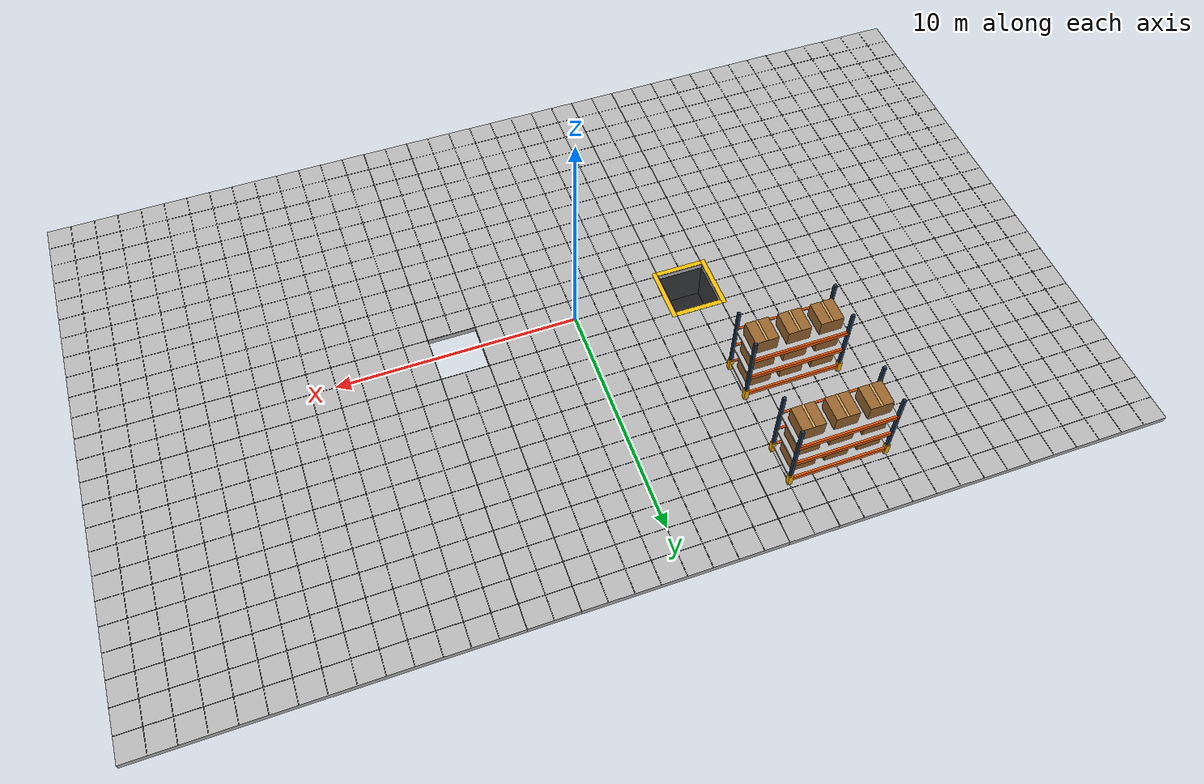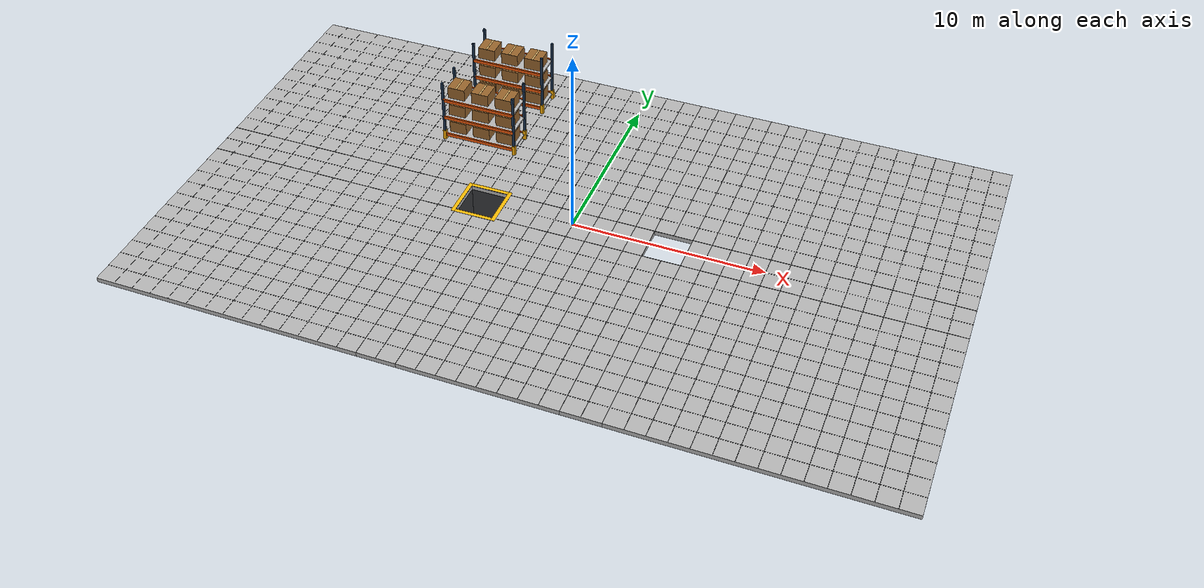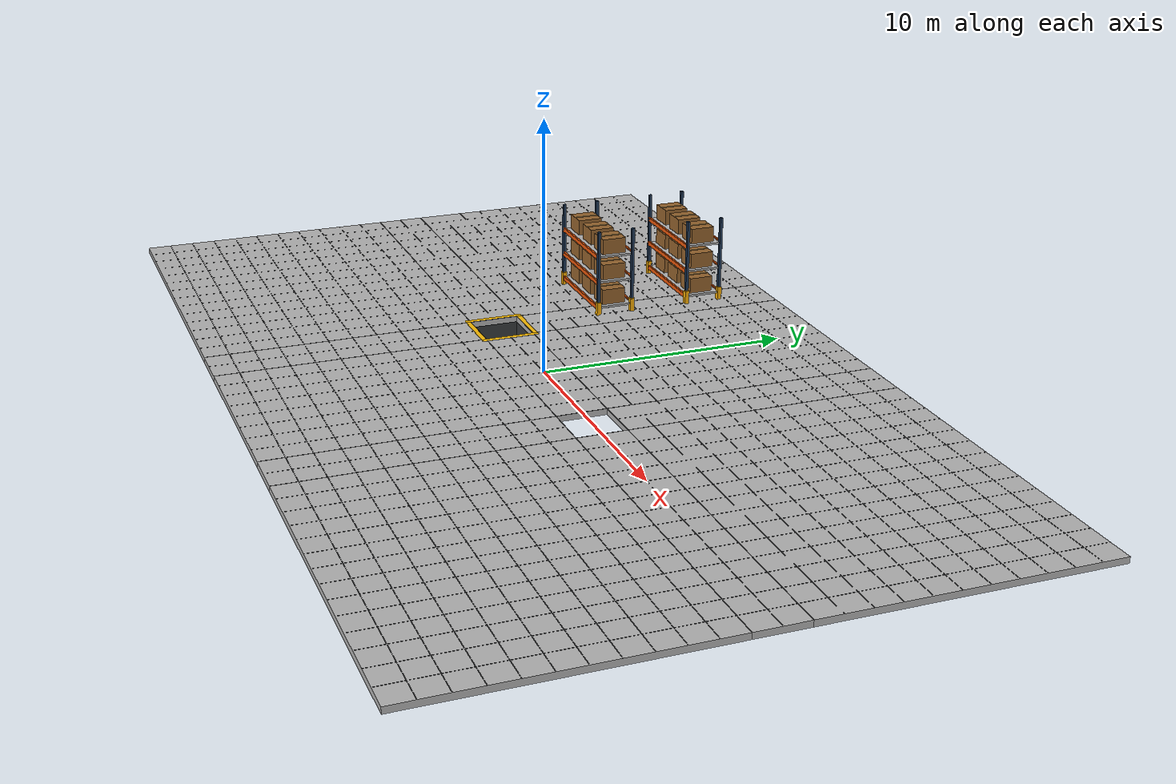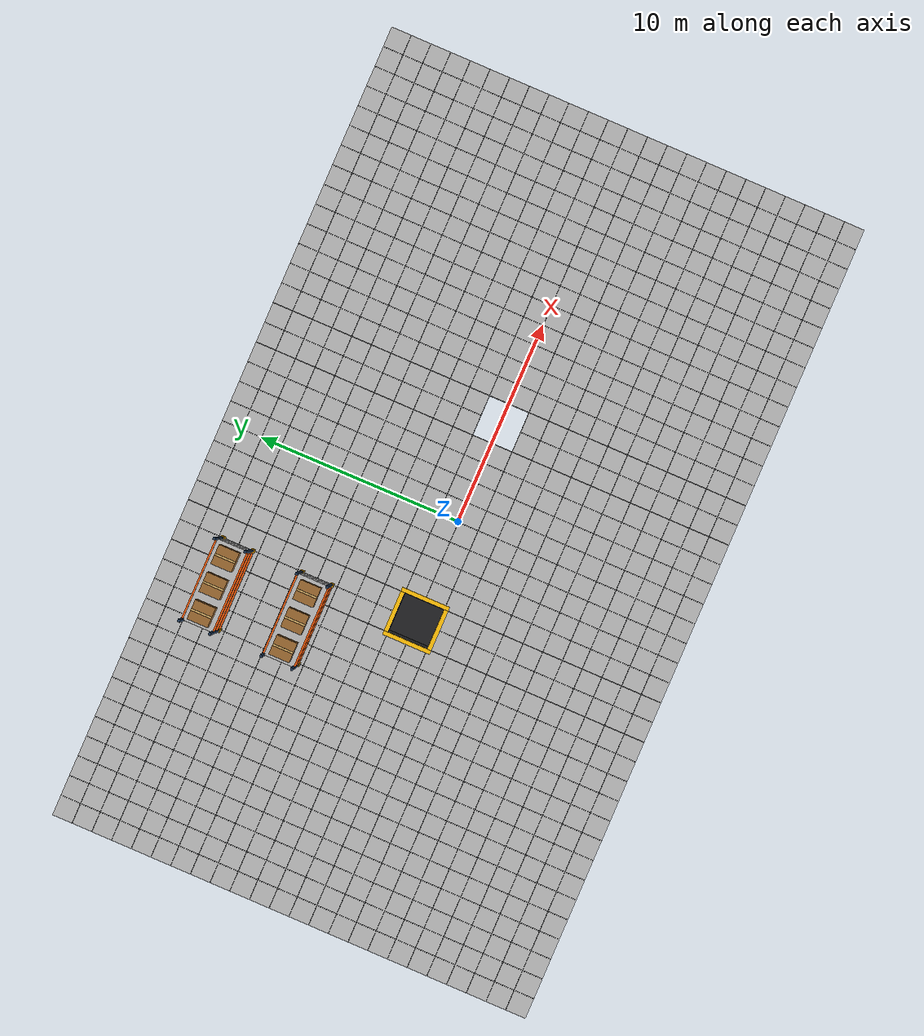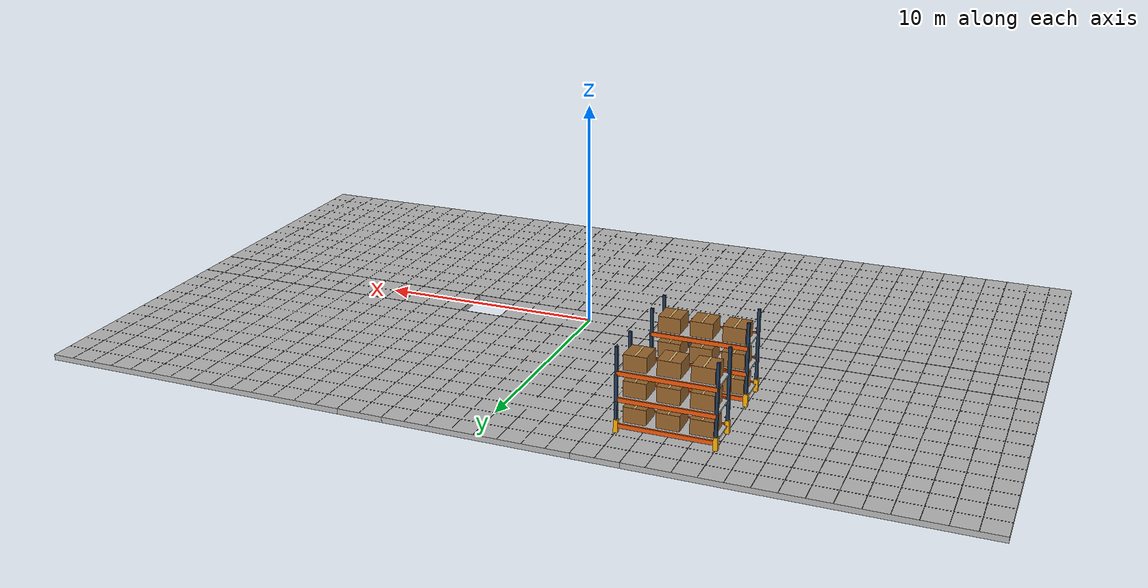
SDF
<sdf version="1.9">
 <world name="factory">
  <model name="unified_factory_floor">
   <static>true</static>
   <link name="body">
    <visual name="floor_0_0_visual">
     <pose>-13 -6.5 -0.12 0 0 0</pose>
     <geometry><mesh><uri>model://factory_scene_assets/meshes/floor_000.dae</uri></mesh></geometry>
    </visual>
    <collision name="floor_0_0_collision">
     <pose>-13 -6.5 -0.12 0 0 0</pose>
     <geometry><box><size>14 11 0.24</size></box></geometry>
    </collision>
    <visual name="floor_0_1_visual">
     <pose>-13 0 -0.12 0 0 0</pose>
     <geometry><mesh><uri>model://factory_scene_assets/meshes/floor_001.dae</uri></mesh></geometry>
    </visual>
    <collision name="floor_0_1_collision">
     <pose>-13 0 -0.12 0 0 0</pose>
     <geometry><box><size>14 2 0.24</size></box></geometry>
    </collision>
    <visual name="floor_0_2_visual">
     <pose>-13 6.5 -0.12 0 0 0</pose>
     <geometry><mesh><uri>model://factory_scene_assets/meshes/floor_000.dae</uri></mesh></geometry>
    </visual>
    <collision name="floor_0_2_collision">
     <pose>-13 6.5 -0.12 0 0 0</pose>
     <geometry><box><size>14 11 0.24</size></box></geometry>
    </collision>
    <visual name="floor_1_0_visual">
     <pose>-5 -6.5 -0.12 0 0 0</pose>
     <geometry><mesh><uri>model://factory_scene_assets/meshes/floor_002.dae</uri></mesh></geometry>
    </visual>
    <collision name="floor_1_0_collision">
     <pose>-5 -6.5 -0.12 0 0 0</pose>
     <geometry><box><size>2 11 0.24</size></box></geometry>
    </collision>
    <visual name="floor_1_2_visual">
     <pose>-5 6.5 -0.12 0 0 0</pose>
     <geometry><mesh><uri>model://factory_scene_assets/meshes/floor_002.dae</uri></mesh></geometry>
    </visual>
    <collision name="floor_1_2_collision">
     <pose>-5 6.5 -0.12 0 0 0</pose>
     <geometry><box><size>2 11 0.24</size></box></geometry>
    </collision>
    <visual name="floor_2_0_visual">
     <pose>0 -6.5 -0.12 0 0 0</pose>
     <geometry><mesh><uri>model://factory_scene_assets/meshes/floor_003.dae</uri></mesh></geometry>
    </visual>
    <collision name="floor_2_0_collision">
     <pose>0 -6.5 -0.12 0 0 0</pose>
     <geometry><box><size>8 11 0.24</size></box></geometry>
    </collision>
    <visual name="floor_2_1_visual">
     <pose>0 0 -0.12 0 0 0</pose>
     <geometry><mesh><uri>model://factory_scene_assets/meshes/floor_004.dae</uri></mesh></geometry>
    </visual>
    <collision name="floor_2_1_collision">
     <pose>0 0 -0.12 0 0 0</pose>
     <geometry><box><size>8 2 0.24</size></box></geometry>
    </collision>
    <visual name="floor_2_2_visual">
     <pose>0 6.5 -0.12 0 0 0</pose>
     <geometry><mesh><uri>model://factory_scene_assets/meshes/floor_003.dae</uri></mesh></geometry>
    </visual>
    <collision name="floor_2_2_collision">
     <pose>0 6.5 -0.12 0 0 0</pose>
     <geometry><box><size>8 11 0.24</size></box></geometry>
    </collision>
    <visual name="floor_3_0_visual">
     <pose>5 -6.5 -0.12 0 0 0</pose>
     <geometry><mesh><uri>model://factory_scene_assets/meshes/floor_002.dae</uri></mesh></geometry>
    </visual>
    <collision name="floor_3_0_collision">
     <pose>5 -6.5 -0.12 0 0 0</pose>
     <geometry><box><size>2 11 0.24</size></box></geometry>
    </collision>
    <visual name="floor_3_2_visual">
     <pose>5 6.5 -0.12 0 0 0</pose>
     <geometry><mesh><uri>model://factory_scene_assets/meshes/floor_002.dae</uri></mesh></geometry>
    </visual>
    <collision name="floor_3_2_collision">
     <pose>5 6.5 -0.12 0 0 0</pose>
     <geometry><box><size>2 11 0.24</size></box></geometry>
    </collision>
    <visual name="floor_4_0_visual">
     <pose>13 -6.5 -0.12 0 0 0</pose>
     <geometry><mesh><uri>model://factory_scene_assets/meshes/floor_000.dae</uri></mesh></geometry>
    </visual>
    <collision name="floor_4_0_collision">
     <pose>13 -6.5 -0.12 0 0 0</pose>
     <geometry><box><size>14 11 0.24</size></box></geometry>
    </collision>
    <visual name="floor_4_1_visual">
     <pose>13 0 -0.12 0 0 0</pose>
     <geometry><mesh><uri>model://factory_scene_assets/meshes/floor_001.dae</uri></mesh></geometry>
    </visual>
    <collision name="floor_4_1_collision">
     <pose>13 0 -0.12 0 0 0</pose>
     <geometry><box><size>14 2 0.24</size></box></geometry>
    </collision>
    <visual name="floor_4_2_visual">
     <pose>13 6.5 -0.12 0 0 0</pose>
     <geometry><mesh><uri>model://factory_scene_assets/meshes/floor_000.dae</uri></mesh></geometry>
    </visual>
    <collision name="floor_4_2_collision">
     <pose>13 6.5 -0.12 0 0 0</pose>
     <geometry><box><size>14 11 0.24</size></box></geometry>
    </collision>
    <visual name="gx_-19_0_visual">
     <pose>-19 0 0.001 0 0 0</pose>
     <geometry><box><size>0.018 24 0.002</size></box></geometry>
     <material><ambient>.24 .25 .26 1</ambient><diffuse>.24 .25 .26 1</diffuse></material>
    </visual>
    <visual name="gx_-18_0_visual">
     <pose>-18 0 0.001 0 0 0</pose>
     <geometry><box><size>0.018 24 0.002</size></box></geometry>
     <material><ambient>.24 .25 .26 1</ambient><diffuse>.24 .25 .26 1</diffuse></material>
    </visual>
    <visual name="gx_-17_0_visual">
     <pose>-17 0 0.001 0 0 0</pose>
     <geometry><box><size>0.018 24 0.002</size></box></geometry>
     <material><ambient>.24 .25 .26 1</ambient><diffuse>.24 .25 .26 1</diffuse></material>
    </visual>
    <visual name="gx_-16_0_visual">
     <pose>-16 0 0.001 0 0 0</pose>
     <geometry><box><size>0.018 24 0.002</size></box></geometry>
     <material><ambient>.24 .25 .26 1</ambient><diffuse>.24 .25 .26 1</diffuse></material>
    </visual>
    <visual name="gx_-15_0_visual">
     <pose>-15 0 0.001 0 0 0</pose>
     <geometry><box><size>0.018 24 0.002</size></box></geometry>
     <material><ambient>.24 .25 .26 1</ambient><diffuse>.24 .25 .26 1</diffuse></material>
    </visual>
    <visual name="gx_-14_0_visual">
     <pose>-14 0 0.001 0 0 0</pose>
     <geometry><box><size>0.018 24 0.002</size></box></geometry>
     <material><ambient>.24 .25 .26 1</ambient><diffuse>.24 .25 .26 1</diffuse></material>
    </visual>
    <visual name="gx_-13_0_visual">
     <pose>-13 0 0.001 0 0 0</pose>
     <geometry><box><size>0.018 24 0.002</size></box></geometry>
     <material><ambient>.24 .25 .26 1</ambient><diffuse>.24 .25 .26 1</diffuse></material>
    </visual>
    <visual name="gx_-12_0_visual">
     <pose>-12 0 0.001 0 0 0</pose>
     <geometry><box><size>0.018 24 0.002</size></box></geometry>
     <material><ambient>.24 .25 .26 1</ambient><diffuse>.24 .25 .26 1</diffuse></material>
    </visual>
    <visual name="gx_-11_0_visual">
     <pose>-11 0 0.001 0 0 0</pose>
     <geometry><box><size>0.018 24 0.002</size></box></geometry>
     <material><ambient>.24 .25 .26 1</ambient><diffuse>.24 .25 .26 1</diffuse></material>
    </visual>
    <visual name="gx_-10_0_visual">
     <pose>-10 0 0.001 0 0 0</pose>
     <geometry><box><size>0.018 24 0.002</size></box></geometry>
     <material><ambient>.24 .25 .26 1</ambient><diffuse>.24 .25 .26 1</diffuse></material>
    </visual>
    <visual name="gx_-9_0_visual">
     <pose>-9 0 0.001 0 0 0</pose>
     <geometry><box><size>0.018 24 0.002</size></box></geometry>
     <material><ambient>.24 .25 .26 1</ambient><diffuse>.24 .25 .26 1</diffuse></material>
    </visual>
    <visual name="gx_-8_0_visual">
     <pose>-8 0 0.001 0 0 0</pose>
     <geometry><box><size>0.018 24 0.002</size></box></geometry>
     <material><ambient>.24 .25 .26 1</ambient><diffuse>.24 .25 .26 1</diffuse></material>
    </visual>
    <visual name="gx_-7_0_visual">
     <pose>-7 0 0.001 0 0 0</pose>
     <geometry><box><size>0.018 24 0.002</size></box></geometry>
     <material><ambient>.24 .25 .26 1</ambient><diffuse>.24 .25 .26 1</diffuse></material>
    </visual>
    <visual name="gx_-6_0_visual">
     <pose>-6 0 0.001 0 0 0</pose>
     <geometry><box><size>0.018 24 0.002</size></box></geometry>
     <material><ambient>.24 .25 .26 1</ambient><diffuse>.24 .25 .26 1</diffuse></material>
    </visual>
    <visual name="gx_-5_0_visual">
     <pose>-5 -6.5 0.001 0 0 0</pose>
     <geometry><box><size>0.018 11 0.002</size></box></geometry>
     <material><ambient>.24 .25 .26 1</ambient><diffuse>.24 .25 .26 1</diffuse></material>
    </visual>
    <visual name="gx_-5_1_visual">
     <pose>-5 6.5 0.001 0 0 0</pose>
     <geometry><box><size>0.018 11 0.002</size></box></geometry>
     <material><ambient>.24 .25 .26 1</ambient><diffuse>.24 .25 .26 1</diffuse></material>
    </visual>
    <visual name="gx_-4_0_visual">
     <pose>-4 0 0.001 0 0 0</pose>
     <geometry><box><size>0.018 24 0.002</size></box></geometry>
     <material><ambient>.24 .25 .26 1</ambient><diffuse>.24 .25 .26 1</diffuse></material>
    </visual>
    <visual name="gx_-3_0_visual">
     <pose>-3 0 0.001 0 0 0</pose>
     <geometry><box><size>0.018 24 0.002</size></box></geometry>
     <material><ambient>.24 .25 .26 1</ambient><diffuse>.24 .25 .26 1</diffuse></material>
    </visual>
    <visual name="gx_-2_0_visual">
     <pose>-2 0 0.001 0 0 0</pose>
     <geometry><box><size>0.018 24 0.002</size></box></geometry>
     <material><ambient>.24 .25 .26 1</ambient><diffuse>.24 .25 .26 1</diffuse></material>
    </visual>
    <visual name="gx_-1_0_visual">
     <pose>-1 0 0.001 0 0 0</pose>
     <geometry><box><size>0.018 24 0.002</size></box></geometry>
     <material><ambient>.24 .25 .26 1</ambient><diffuse>.24 .25 .26 1</diffuse></material>
    </visual>
    <visual name="gx_0_0_visual">
     <pose>0 0 0.001 0 0 0</pose>
     <geometry><box><size>0.018 24 0.002</size></box></geometry>
     <material><ambient>.24 .25 .26 1</ambient><diffuse>.24 .25 .26 1</diffuse></material>
    </visual>
    <visual name="gx_1_0_visual">
     <pose>1 0 0.001 0 0 0</pose>
     <geometry><box><size>0.018 24 0.002</size></box></geometry>
     <material><ambient>.24 .25 .26 1</ambient><diffuse>.24 .25 .26 1</diffuse></material>
    </visual>
    <visual name="gx_2_0_visual">
     <pose>2 0 0.001 0 0 0</pose>
     <geometry><box><size>0.018 24 0.002</size></box></geometry>
     <material><ambient>.24 .25 .26 1</ambient><diffuse>.24 .25 .26 1</diffuse></material>
    </visual>
    <visual name="gx_3_0_visual">
     <pose>3 0 0.001 0 0 0</pose>
     <geometry><box><size>0.018 24 0.002</size></box></geometry>
     <material><ambient>.24 .25 .26 1</ambient><diffuse>.24 .25 .26 1</diffuse></material>
    </visual>
    <visual name="gx_4_0_visual">
     <pose>4 0 0.001 0 0 0</pose>
     <geometry><box><size>0.018 24 0.002</size></box></geometry>
     <material><ambient>.24 .25 .26 1</ambient><diffuse>.24 .25 .26 1</diffuse></material>
    </visual>
    <visual name="gx_5_0_visual">
     <pose>5 -6.5 0.001 0 0 0</pose>
     <geometry><box><size>0.018 11 0.002</size></box></geometry>
     <material><ambient>.24 .25 .26 1</ambient><diffuse>.24 .25 .26 1</diffuse></material>
    </visual>
    <visual name="gx_5_1_visual">
     <pose>5 6.5 0.001 0 0 0</pose>
     <geometry><box><size>0.018 11 0.002</size></box></geometry>
     <material><ambient>.24 .25 .26 1</ambient><diffuse>.24 .25 .26 1</diffuse></material>
    </visual>
    <visual name="gx_6_0_visual">
     <pose>6 0 0.001 0 0 0</pose>
     <geometry><box><size>0.018 24 0.002</size></box></geometry>
     <material><ambient>.24 .25 .26 1</ambient><diffuse>.24 .25 .26 1</diffuse></material>
    </visual>
    <visual name="gx_7_0_visual">
     <pose>7 0 0.001 0 0 0</pose>
     <geometry><box><size>0.018 24 0.002</size></box></geometry>
     <material><ambient>.24 .25 .26 1</ambient><diffuse>.24 .25 .26 1</diffuse></material>
    </visual>
    <visual name="gx_8_0_visual">
     <pose>8 0 0.001 0 0 0</pose>
     <geometry><box><size>0.018 24 0.002</size></box></geometry>
     <material><ambient>.24 .25 .26 1</ambient><diffuse>.24 .25 .26 1</diffuse></material>
    </visual>
    <visual name="gx_9_0_visual">
     <pose>9 0 0.001 0 0 0</pose>
     <geometry><box><size>0.018 24 0.002</size></box></geometry>
     <material><ambient>.24 .25 .26 1</ambient><diffuse>.24 .25 .26 1</diffuse></material>
    </visual>
    <visual name="gx_10_0_visual">
     <pose>10 0 0.001 0 0 0</pose>
     <geometry><box><size>0.018 24 0.002</size></box></geometry>
     <material><ambient>.24 .25 .26 1</ambient><diffuse>.24 .25 .26 1</diffuse></material>
    </visual>
    <visual name="gx_11_0_visual">
     <pose>11 0 0.001 0 0 0</pose>
     <geometry><box><size>0.018 24 0.002</size></box></geometry>
     <material><ambient>.24 .25 .26 1</ambient><diffuse>.24 .25 .26 1</diffuse></material>
    </visual>
    <visual name="gx_12_0_visual">
     <pose>12 0 0.001 0 0 0</pose>
     <geometry><box><size>0.018 24 0.002</size></box></geometry>
     <material><ambient>.24 .25 .26 1</ambient><diffuse>.24 .25 .26 1</diffuse></material>
    </visual>
    <visual name="gx_13_0_visual">
     <pose>13 0 0.001 0 0 0</pose>
     <geometry><box><size>0.018 24 0.002</size></box></geometry>
     <material><ambient>.24 .25 .26 1</ambient><diffuse>.24 .25 .26 1</diffuse></material>
    </visual>
    <visual name="gx_14_0_visual">
     <pose>14 0 0.001 0 0 0</pose>
     <geometry><box><size>0.018 24 0.002</size></box></geometry>
     <material><ambient>.24 .25 .26 1</ambient><diffuse>.24 .25 .26 1</diffuse></material>
    </visual>
    <visual name="gx_15_0_visual">
     <pose>15 0 0.001 0 0 0</pose>
     <geometry><box><size>0.018 24 0.002</size></box></geometry>
     <material><ambient>.24 .25 .26 1</ambient><diffuse>.24 .25 .26 1</diffuse></material>
    </visual>
    <visual name="gx_16_0_visual">
     <pose>16 0 0.001 0 0 0</pose>
     <geometry><box><size>0.018 24 0.002</size></box></geometry>
     <material><ambient>.24 .25 .26 1</ambient><diffuse>.24 .25 .26 1</diffuse></material>
    </visual>
    <visual name="gx_17_0_visual">
     <pose>17 0 0.001 0 0 0</pose>
     <geometry><box><size>0.018 24 0.002</size></box></geometry>
     <material><ambient>.24 .25 .26 1</ambient><diffuse>.24 .25 .26 1</diffuse></material>
    </visual>
    <visual name="gx_18_0_visual">
     <pose>18 0 0.001 0 0 0</pose>
     <geometry><box><size>0.018 24 0.002</size></box></geometry>
     <material><ambient>.24 .25 .26 1</ambient><diffuse>.24 .25 .26 1</diffuse></material>
    </visual>
    <visual name="gx_19_0_visual">
     <pose>19 0 0.001 0 0 0</pose>
     <geometry><box><size>0.018 24 0.002</size></box></geometry>
     <material><ambient>.24 .25 .26 1</ambient><diffuse>.24 .25 .26 1</diffuse></material>
    </visual>
    <visual name="gy_-11_0_visual">
     <pose>0 -11 0.001 0 0 0</pose>
     <geometry><box><size>40 0.018 0.002</size></box></geometry>
     <material><ambient>.24 .25 .26 1</ambient><diffuse>.24 .25 .26 1</diffuse></material>
    </visual>
    <visual name="gy_-10_0_visual">
     <pose>0 -10 0.001 0 0 0</pose>
     <geometry><box><size>40 0.018 0.002</size></box></geometry>
     <material><ambient>.24 .25 .26 1</ambient><diffuse>.24 .25 .26 1</diffuse></material>
    </visual>
    <visual name="gy_-9_0_visual">
     <pose>0 -9 0.001 0 0 0</pose>
     <geometry><box><size>40 0.018 0.002</size></box></geometry>
     <material><ambient>.24 .25 .26 1</ambient><diffuse>.24 .25 .26 1</diffuse></material>
    </visual>
    <visual name="gy_-8_0_visual">
     <pose>0 -8 0.001 0 0 0</pose>
     <geometry><box><size>40 0.018 0.002</size></box></geometry>
     <material><ambient>.24 .25 .26 1</ambient><diffuse>.24 .25 .26 1</diffuse></material>
    </visual>
    <visual name="gy_-7_0_visual">
     <pose>0 -7 0.001 0 0 0</pose>
     <geometry><box><size>40 0.018 0.002</size></box></geometry>
     <material><ambient>.24 .25 .26 1</ambient><diffuse>.24 .25 .26 1</diffuse></material>
    </visual>
    <visual name="gy_-6_0_visual">
     <pose>0 -6 0.001 0 0 0</pose>
     <geometry><box><size>40 0.018 0.002</size></box></geometry>
     <material><ambient>.24 .25 .26 1</ambient><diffuse>.24 .25 .26 1</diffuse></material>
    </visual>
    <visual name="gy_-5_0_visual">
     <pose>0 -5 0.001 0 0 0</pose>
     <geometry><box><size>40 0.018 0.002</size></box></geometry>
     <material><ambient>.24 .25 .26 1</ambient><diffuse>.24 .25 .26 1</diffuse></material>
    </visual>
    <visual name="gy_-4_0_visual">
     <pose>0 -4 0.001 0 0 0</pose>
     <geometry><box><size>40 0.018 0.002</size></box></geometry>
     <material><ambient>.24 .25 .26 1</ambient><diffuse>.24 .25 .26 1</diffuse></material>
    </visual>
    <visual name="gy_-3_0_visual">
     <pose>0 -3 0.001 0 0 0</pose>
     <geometry><box><size>40 0.018 0.002</size></box></geometry>
     <material><ambient>.24 .25 .26 1</ambient><diffuse>.24 .25 .26 1</diffuse></material>
    </visual>
    <visual name="gy_-2_0_visual">
     <pose>0 -2 0.001 0 0 0</pose>
     <geometry><box><size>40 0.018 0.002</size></box></geometry>
     <material><ambient>.24 .25 .26 1</ambient><diffuse>.24 .25 .26 1</diffuse></material>
    </visual>
    <visual name="gy_-1_0_visual">
     <pose>0 -1 0.001 0 0 0</pose>
     <geometry><box><size>40 0.018 0.002</size></box></geometry>
     <material><ambient>.24 .25 .26 1</ambient><diffuse>.24 .25 .26 1</diffuse></material>
    </visual>
    <visual name="gy_0_0_visual">
     <pose>-13 0 0.001 0 0 0</pose>
     <geometry><box><size>14 0.018 0.002</size></box></geometry>
     <material><ambient>.24 .25 .26 1</ambient><diffuse>.24 .25 .26 1</diffuse></material>
    </visual>
    <visual name="gy_0_1_visual">
     <pose>0 0 0.001 0 0 0</pose>
     <geometry><box><size>8 0.018 0.002</size></box></geometry>
     <material><ambient>.24 .25 .26 1</ambient><diffuse>.24 .25 .26 1</diffuse></material>
    </visual>
    <visual name="gy_0_2_visual">
     <pose>13 0 0.001 0 0 0</pose>
     <geometry><box><size>14 0.018 0.002</size></box></geometry>
     <material><ambient>.24 .25 .26 1</ambient><diffuse>.24 .25 .26 1</diffuse></material>
    </visual>
    <visual name="gy_1_0_visual">
     <pose>0 1 0.001 0 0 0</pose>
     <geometry><box><size>40 0.018 0.002</size></box></geometry>
     <material><ambient>.24 .25 .26 1</ambient><diffuse>.24 .25 .26 1</diffuse></material>
    </visual>
    <visual name="gy_2_0_visual">
     <pose>0 2 0.001 0 0 0</pose>
     <geometry><box><size>40 0.018 0.002</size></box></geometry>
     <material><ambient>.24 .25 .26 1</ambient><diffuse>.24 .25 .26 1</diffuse></material>
    </visual>
    <visual name="gy_3_0_visual">
     <pose>0 3 0.001 0 0 0</pose>
     <geometry><box><size>40 0.018 0.002</size></box></geometry>
     <material><ambient>.24 .25 .26 1</ambient><diffuse>.24 .25 .26 1</diffuse></material>
    </visual>
    <visual name="gy_4_0_visual">
     <pose>0 4 0.001 0 0 0</pose>
     <geometry><box><size>40 0.018 0.002</size></box></geometry>
     <material><ambient>.24 .25 .26 1</ambient><diffuse>.24 .25 .26 1</diffuse></material>
    </visual>
    <visual name="gy_5_0_visual">
     <pose>0 5 0.001 0 0 0</pose>
     <geometry><box><size>40 0.018 0.002</size></box></geometry>
     <material><ambient>.24 .25 .26 1</ambient><diffuse>.24 .25 .26 1</diffuse></material>
    </visual>
    <visual name="gy_6_0_visual">
     <pose>0 6 0.001 0 0 0</pose>
     <geometry><box><size>40 0.018 0.002</size></box></geometry>
     <material><ambient>.24 .25 .26 1</ambient><diffuse>.24 .25 .26 1</diffuse></material>
    </visual>
    <visual name="gy_7_0_visual">
     <pose>0 7 0.001 0 0 0</pose>
     <geometry><box><size>40 0.018 0.002</size></box></geometry>
     <material><ambient>.24 .25 .26 1</ambient><diffuse>.24 .25 .26 1</diffuse></material>
    </visual>
    <visual name="gy_8_0_visual">
     <pose>0 8 0.001 0 0 0</pose>
     <geometry><box><size>40 0.018 0.002</size></box></geometry>
     <material><ambient>.24 .25 .26 1</ambient><diffuse>.24 .25 .26 1</diffuse></material>
    </visual>
    <visual name="gy_9_0_visual">
     <pose>0 9 0.001 0 0 0</pose>
     <geometry><box><size>40 0.018 0.002</size></box></geometry>
     <material><ambient>.24 .25 .26 1</ambient><diffuse>.24 .25 .26 1</diffuse></material>
    </visual>
    <visual name="gy_10_0_visual">
     <pose>0 10 0.001 0 0 0</pose>
     <geometry><box><size>40 0.018 0.002</size></box></geometry>
     <material><ambient>.24 .25 .26 1</ambient><diffuse>.24 .25 .26 1</diffuse></material>
    </visual>
    <visual name="gy_11_0_visual">
     <pose>0 11 0.001 0 0 0</pose>
     <geometry><box><size>40 0.018 0.002</size></box></geometry>
     <material><ambient>.24 .25 .26 1</ambient><diffuse>.24 .25 .26 1</diffuse></material>
    </visual>
   </link>
  </model>
  <model name="pit_1">
   <static>true</static>
   <pose>-5 0 0 0 0 0</pose>
   <link name="body">
    <visual name="bottom_visual">
     <pose>0 0 -2.1 0 0 0</pose>
     <geometry><box><size>2.4 2.4 0.2</size></box></geometry>
     <material><ambient>.12 .12 .13 1</ambient><diffuse>.12 .12 .13 1</diffuse></material>
    </visual>
    <collision name="bottom_collision">
     <pose>0 0 -2.1 0 0 0</pose>
     <geometry><box><size>2.4 2.4 0.2</size></box></geometry>
    </collision>
    <visual name="wall0_visual">
     <pose>1.1 0 -1.12 0 0 0</pose>
     <geometry><box><size>0.2 2.4 1.76</size></box></geometry>
     <material><ambient>.22 .23 .24 1</ambient><diffuse>.22 .23 .24 1</diffuse></material>
    </visual>
    <collision name="wall0_collision">
     <pose>1.1 0 -1.12 0 0 0</pose>
     <geometry><box><size>0.2 2.4 1.76</size></box></geometry>
    </collision>
    <visual name="edge0_visual">
     <pose>1.1 0 0.003 0 0 0</pose>
     <geometry><box><size>0.2 2.4 0.006</size></box></geometry>
     <material><ambient>1 .75 .02 1</ambient><diffuse>1 .75 .02 1</diffuse></material>
    </visual>
    <visual name="wall1_visual">
     <pose>-1.1 0 -1.12 0 0 0</pose>
     <geometry><box><size>0.2 2.4 1.76</size></box></geometry>
     <material><ambient>.22 .23 .24 1</ambient><diffuse>.22 .23 .24 1</diffuse></material>
    </visual>
    <collision name="wall1_collision">
     <pose>-1.1 0 -1.12 0 0 0</pose>
     <geometry><box><size>0.2 2.4 1.76</size></box></geometry>
    </collision>
    <visual name="edge1_visual">
     <pose>-1.1 0 0.003 0 0 0</pose>
     <geometry><box><size>0.2 2.4 0.006</size></box></geometry>
     <material><ambient>1 .75 .02 1</ambient><diffuse>1 .75 .02 1</diffuse></material>
    </visual>
    <visual name="wall2_visual">
     <pose>0 1.1 -1.12 0 0 0</pose>
     <geometry><box><size>2 0.2 1.76</size></box></geometry>
     <material><ambient>.22 .23 .24 1</ambient><diffuse>.22 .23 .24 1</diffuse></material>
    </visual>
    <collision name="wall2_collision">
     <pose>0 1.1 -1.12 0 0 0</pose>
     <geometry><box><size>2 0.2 1.76</size></box></geometry>
    </collision>
    <visual name="edge2_visual">
     <pose>0 1.1 0.003 0 0 0</pose>
     <geometry><box><size>2 0.2 0.006</size></box></geometry>
     <material><ambient>1 .75 .02 1</ambient><diffuse>1 .75 .02 1</diffuse></material>
    </visual>
    <visual name="wall3_visual">
     <pose>0 -1.1 -1.12 0 0 0</pose>
     <geometry><box><size>2 0.2 1.76</size></box></geometry>
     <material><ambient>.22 .23 .24 1</ambient><diffuse>.22 .23 .24 1</diffuse></material>
    </visual>
    <collision name="wall3_collision">
     <pose>0 -1.1 -1.12 0 0 0</pose>
     <geometry><box><size>2 0.2 1.76</size></box></geometry>
    </collision>
    <visual name="edge3_visual">
     <pose>0 -1.1 0.003 0 0 0</pose>
     <geometry><box><size>2 0.2 0.006</size></box></geometry>
     <material><ambient>1 .75 .02 1</ambient><diffuse>1 .75 .02 1</diffuse></material>
    </visual>
   </link>
  </model>
  <model name="rack_-1_0_2">
   <static>true</static>
   <pose>-7 5 0 0 0 0</pose>
   <link name="body">
    <visual name="post0_visual">
     <pose>-2 -0.75 1.8 0 0 0</pose>
     <geometry><box><size>0.12 0.12 3.6</size></box></geometry>
     <material><ambient>.12 .22 .34 1</ambient><diffuse>.12 .22 .34 1</diffuse></material>
    </visual>
    <collision name="post0_collision">
     <pose>-2 -0.75 1.8 0 0 0</pose>
     <geometry><box><size>0.12 0.12 3.6</size></box></geometry>
    </collision>
    <visual name="guard0_visual">
     <pose>-2 -0.75 0.275 0 0 0</pose>
     <geometry><box><size>0.18 0.18 0.55</size></box></geometry>
     <material><ambient>1 .7 .02 1</ambient><diffuse>1 .7 .02 1</diffuse></material>
    </visual>
    <collision name="guard0_collision">
     <pose>-2 -0.75 0.275 0 0 0</pose>
     <geometry><box><size>0.18 0.18 0.55</size></box></geometry>
    </collision>
    <visual name="post1_visual">
     <pose>2 -0.75 1.8 0 0 0</pose>
     <geometry><box><size>0.12 0.12 3.6</size></box></geometry>
     <material><ambient>.12 .22 .34 1</ambient><diffuse>.12 .22 .34 1</diffuse></material>
    </visual>
    <collision name="post1_collision">
     <pose>2 -0.75 1.8 0 0 0</pose>
     <geometry><box><size>0.12 0.12 3.6</size></box></geometry>
    </collision>
    <visual name="guard1_visual">
     <pose>2 -0.75 0.275 0 0 0</pose>
     <geometry><box><size>0.18 0.18 0.55</size></box></geometry>
     <material><ambient>1 .7 .02 1</ambient><diffuse>1 .7 .02 1</diffuse></material>
    </visual>
    <collision name="guard1_collision">
     <pose>2 -0.75 0.275 0 0 0</pose>
     <geometry><box><size>0.18 0.18 0.55</size></box></geometry>
    </collision>
    <visual name="post2_visual">
     <pose>-2 0.75 1.8 0 0 0</pose>
     <geometry><box><size>0.12 0.12 3.6</size></box></geometry>
     <material><ambient>.12 .22 .34 1</ambient><diffuse>.12 .22 .34 1</diffuse></material>
    </visual>
    <collision name="post2_collision">
     <pose>-2 0.75 1.8 0 0 0</pose>
     <geometry><box><size>0.12 0.12 3.6</size></box></geometry>
    </collision>
    <visual name="guard2_visual">
     <pose>-2 0.75 0.275 0 0 0</pose>
     <geometry><box><size>0.18 0.18 0.55</size></box></geometry>
     <material><ambient>1 .7 .02 1</ambient><diffuse>1 .7 .02 1</diffuse></material>
    </visual>
    <collision name="guard2_collision">
     <pose>-2 0.75 0.275 0 0 0</pose>
     <geometry><box><size>0.18 0.18 0.55</size></box></geometry>
    </collision>
    <visual name="post3_visual">
     <pose>2 0.75 1.8 0 0 0</pose>
     <geometry><box><size>0.12 0.12 3.6</size></box></geometry>
     <material><ambient>.12 .22 .34 1</ambient><diffuse>.12 .22 .34 1</diffuse></material>
    </visual>
    <collision name="post3_collision">
     <pose>2 0.75 1.8 0 0 0</pose>
     <geometry><box><size>0.12 0.12 3.6</size></box></geometry>
    </collision>
    <visual name="guard3_visual">
     <pose>2 0.75 0.275 0 0 0</pose>
     <geometry><box><size>0.18 0.18 0.55</size></box></geometry>
     <material><ambient>1 .7 .02 1</ambient><diffuse>1 .7 .02 1</diffuse></material>
    </visual>
    <collision name="guard3_collision">
     <pose>2 0.75 0.275 0 0 0</pose>
     <geometry><box><size>0.18 0.18 0.55</size></box></geometry>
    </collision>
    <visual name="shelf0_visual">
     <pose>0 0 0.3 0 0 0</pose>
     <geometry><mesh><uri>model://factory_scene_assets/meshes/wood_010.dae</uri></mesh></geometry>
    </visual>
    <collision name="shelf0_collision">
     <pose>0 0 0.3 0 0 0</pose>
     <geometry><box><size>4 1.5 0.08</size></box></geometry>
    </collision>
    <visual name="beam0_0_visual">
     <pose>0 -0.77 0.3 0 0 0</pose>
     <geometry><box><size>4 0.08 0.18</size></box></geometry>
     <material><ambient>.95 .35 .035 1</ambient><diffuse>.95 .35 .035 1</diffuse></material>
    </visual>
    <collision name="beam0_0_collision">
     <pose>0 -0.77 0.3 0 0 0</pose>
     <geometry><box><size>4 0.08 0.18</size></box></geometry>
    </collision>
    <visual name="beam0_1_visual">
     <pose>0 0.77 0.3 0 0 0</pose>
     <geometry><box><size>4 0.08 0.18</size></box></geometry>
     <material><ambient>.95 .35 .035 1</ambient><diffuse>.95 .35 .035 1</diffuse></material>
    </visual>
    <collision name="beam0_1_collision">
     <pose>0 0.77 0.3 0 0 0</pose>
     <geometry><box><size>4 0.08 0.18</size></box></geometry>
    </collision>
    <visual name="cargo0_0_visual">
     <pose>-1.35 0 0.665 0 0 0</pose>
     <geometry><box><size>0.95 1 0.65</size></box></geometry>
     <material><ambient>.60 .40 .18 1</ambient><diffuse>.60 .40 .18 1</diffuse></material>
    </visual>
    <collision name="cargo0_0_collision">
     <pose>-1.35 0 0.665 0 0 0</pose>
     <geometry><box><size>0.95 1 0.65</size></box></geometry>
    </collision>
    <visual name="cargo0_0_tape_visual">
     <pose>-1.35 0 0.993 0 0 0</pose>
     <geometry><box><size>0.09 1 0.006</size></box></geometry>
     <material><ambient>.85 .69 .4 1</ambient><diffuse>.85 .69 .4 1</diffuse></material>
    </visual>
    <visual name="cargo0_1_visual">
     <pose>0 0 0.665 0 0 0</pose>
     <geometry><box><size>0.95 1 0.65</size></box></geometry>
     <material><ambient>.60 .40 .18 1</ambient><diffuse>.60 .40 .18 1</diffuse></material>
    </visual>
    <collision name="cargo0_1_collision">
     <pose>0 0 0.665 0 0 0</pose>
     <geometry><box><size>0.95 1 0.65</size></box></geometry>
    </collision>
    <visual name="cargo0_1_tape_visual">
     <pose>0 0 0.993 0 0 0</pose>
     <geometry><box><size>0.09 1 0.006</size></box></geometry>
     <material><ambient>.85 .69 .4 1</ambient><diffuse>.85 .69 .4 1</diffuse></material>
    </visual>
    <visual name="cargo0_2_visual">
     <pose>1.35 0 0.665 0 0 0</pose>
     <geometry><box><size>0.95 1 0.65</size></box></geometry>
     <material><ambient>.60 .40 .18 1</ambient><diffuse>.60 .40 .18 1</diffuse></material>
    </visual>
    <collision name="cargo0_2_collision">
     <pose>1.35 0 0.665 0 0 0</pose>
     <geometry><box><size>0.95 1 0.65</size></box></geometry>
    </collision>
    <visual name="cargo0_2_tape_visual">
     <pose>1.35 0 0.993 0 0 0</pose>
     <geometry><box><size>0.09 1 0.006</size></box></geometry>
     <material><ambient>.85 .69 .4 1</ambient><diffuse>.85 .69 .4 1</diffuse></material>
    </visual>
    <visual name="shelf1_visual">
     <pose>0 0 1.4 0 0 0</pose>
     <geometry><mesh><uri>model://factory_scene_assets/meshes/wood_010.dae</uri></mesh></geometry>
    </visual>
    <collision name="shelf1_collision">
     <pose>0 0 1.4 0 0 0</pose>
     <geometry><box><size>4 1.5 0.08</size></box></geometry>
    </collision>
    <visual name="beam1_0_visual">
     <pose>0 -0.77 1.4 0 0 0</pose>
     <geometry><box><size>4 0.08 0.18</size></box></geometry>
     <material><ambient>.95 .35 .035 1</ambient><diffuse>.95 .35 .035 1</diffuse></material>
    </visual>
    <collision name="beam1_0_collision">
     <pose>0 -0.77 1.4 0 0 0</pose>
     <geometry><box><size>4 0.08 0.18</size></box></geometry>
    </collision>
    <visual name="beam1_1_visual">
     <pose>0 0.77 1.4 0 0 0</pose>
     <geometry><box><size>4 0.08 0.18</size></box></geometry>
     <material><ambient>.95 .35 .035 1</ambient><diffuse>.95 .35 .035 1</diffuse></material>
    </visual>
    <collision name="beam1_1_collision">
     <pose>0 0.77 1.4 0 0 0</pose>
     <geometry><box><size>4 0.08 0.18</size></box></geometry>
    </collision>
    <visual name="cargo1_0_visual">
     <pose>-1.35 0 1.765 0 0 0</pose>
     <geometry><box><size>0.95 1 0.65</size></box></geometry>
     <material><ambient>.60 .40 .18 1</ambient><diffuse>.60 .40 .18 1</diffuse></material>
    </visual>
    <collision name="cargo1_0_collision">
     <pose>-1.35 0 1.765 0 0 0</pose>
     <geometry><box><size>0.95 1 0.65</size></box></geometry>
    </collision>
    <visual name="cargo1_0_tape_visual">
     <pose>-1.35 0 2.093 0 0 0</pose>
     <geometry><box><size>0.09 1 0.006</size></box></geometry>
     <material><ambient>.85 .69 .4 1</ambient><diffuse>.85 .69 .4 1</diffuse></material>
    </visual>
    <visual name="cargo1_1_visual">
     <pose>0 0 1.765 0 0 0</pose>
     <geometry><box><size>0.95 1 0.65</size></box></geometry>
     <material><ambient>.60 .40 .18 1</ambient><diffuse>.60 .40 .18 1</diffuse></material>
    </visual>
    <collision name="cargo1_1_collision">
     <pose>0 0 1.765 0 0 0</pose>
     <geometry><box><size>0.95 1 0.65</size></box></geometry>
    </collision>
    <visual name="cargo1_1_tape_visual">
     <pose>0 0 2.093 0 0 0</pose>
     <geometry><box><size>0.09 1 0.006</size></box></geometry>
     <material><ambient>.85 .69 .4 1</ambient><diffuse>.85 .69 .4 1</diffuse></material>
    </visual>
    <visual name="cargo1_2_visual">
     <pose>1.35 0 1.765 0 0 0</pose>
     <geometry><box><size>0.95 1 0.65</size></box></geometry>
     <material><ambient>.60 .40 .18 1</ambient><diffuse>.60 .40 .18 1</diffuse></material>
    </visual>
    <collision name="cargo1_2_collision">
     <pose>1.35 0 1.765 0 0 0</pose>
     <geometry><box><size>0.95 1 0.65</size></box></geometry>
    </collision>
    <visual name="cargo1_2_tape_visual">
     <pose>1.35 0 2.093 0 0 0</pose>
     <geometry><box><size>0.09 1 0.006</size></box></geometry>
     <material><ambient>.85 .69 .4 1</ambient><diffuse>.85 .69 .4 1</diffuse></material>
    </visual>
    <visual name="shelf2_visual">
     <pose>0 0 2.5 0 0 0</pose>
     <geometry><mesh><uri>model://factory_scene_assets/meshes/wood_010.dae</uri></mesh></geometry>
    </visual>
    <collision name="shelf2_collision">
     <pose>0 0 2.5 0 0 0</pose>
     <geometry><box><size>4 1.5 0.08</size></box></geometry>
    </collision>
    <visual name="beam2_0_visual">
     <pose>0 -0.77 2.5 0 0 0</pose>
     <geometry><box><size>4 0.08 0.18</size></box></geometry>
     <material><ambient>.95 .35 .035 1</ambient><diffuse>.95 .35 .035 1</diffuse></material>
    </visual>
    <collision name="beam2_0_collision">
     <pose>0 -0.77 2.5 0 0 0</pose>
     <geometry><box><size>4 0.08 0.18</size></box></geometry>
    </collision>
    <visual name="beam2_1_visual">
     <pose>0 0.77 2.5 0 0 0</pose>
     <geometry><box><size>4 0.08 0.18</size></box></geometry>
     <material><ambient>.95 .35 .035 1</ambient><diffuse>.95 .35 .035 1</diffuse></material>
    </visual>
    <collision name="beam2_1_collision">
     <pose>0 0.77 2.5 0 0 0</pose>
     <geometry><box><size>4 0.08 0.18</size></box></geometry>
    </collision>
    <visual name="cargo2_0_visual">
     <pose>-1.35 0 2.865 0 0 0</pose>
     <geometry><box><size>0.95 1 0.65</size></box></geometry>
     <material><ambient>.60 .40 .18 1</ambient><diffuse>.60 .40 .18 1</diffuse></material>
    </visual>
    <collision name="cargo2_0_collision">
     <pose>-1.35 0 2.865 0 0 0</pose>
     <geometry><box><size>0.95 1 0.65</size></box></geometry>
    </collision>
    <visual name="cargo2_0_tape_visual">
     <pose>-1.35 0 3.193 0 0 0</pose>
     <geometry><box><size>0.09 1 0.006</size></box></geometry>
     <material><ambient>.85 .69 .4 1</ambient><diffuse>.85 .69 .4 1</diffuse></material>
    </visual>
    <visual name="cargo2_1_visual">
     <pose>0 0 2.865 0 0 0</pose>
     <geometry><box><size>0.95 1 0.65</size></box></geometry>
     <material><ambient>.60 .40 .18 1</ambient><diffuse>.60 .40 .18 1</diffuse></material>
    </visual>
    <collision name="cargo2_1_collision">
     <pose>0 0 2.865 0 0 0</pose>
     <geometry><box><size>0.95 1 0.65</size></box></geometry>
    </collision>
    <visual name="cargo2_1_tape_visual">
     <pose>0 0 3.193 0 0 0</pose>
     <geometry><box><size>0.09 1 0.006</size></box></geometry>
     <material><ambient>.85 .69 .4 1</ambient><diffuse>.85 .69 .4 1</diffuse></material>
    </visual>
    <visual name="cargo2_2_visual">
     <pose>1.35 0 2.865 0 0 0</pose>
     <geometry><box><size>0.95 1 0.65</size></box></geometry>
     <material><ambient>.60 .40 .18 1</ambient><diffuse>.60 .40 .18 1</diffuse></material>
    </visual>
    <collision name="cargo2_2_collision">
     <pose>1.35 0 2.865 0 0 0</pose>
     <geometry><box><size>0.95 1 0.65</size></box></geometry>
    </collision>
    <visual name="cargo2_2_tape_visual">
     <pose>1.35 0 3.193 0 0 0</pose>
     <geometry><box><size>0.09 1 0.006</size></box></geometry>
     <material><ambient>.85 .69 .4 1</ambient><diffuse>.85 .69 .4 1</diffuse></material>
    </visual>
   </link>
  </model>
  <model name="rack_-1_0_3">
   <static>true</static>
   <pose>-7 9 0 0 0 0</pose>
   <link name="body">
    <visual name="post0_visual">
     <pose>-2 -0.75 1.8 0 0 0</pose>
     <geometry><box><size>0.12 0.12 3.6</size></box></geometry>
     <material><ambient>.12 .22 .34 1</ambient><diffuse>.12 .22 .34 1</diffuse></material>
    </visual>
    <collision name="post0_collision">
     <pose>-2 -0.75 1.8 0 0 0</pose>
     <geometry><box><size>0.12 0.12 3.6</size></box></geometry>
    </collision>
    <visual name="guard0_visual">
     <pose>-2 -0.75 0.275 0 0 0</pose>
     <geometry><box><size>0.18 0.18 0.55</size></box></geometry>
     <material><ambient>1 .7 .02 1</ambient><diffuse>1 .7 .02 1</diffuse></material>
    </visual>
    <collision name="guard0_collision">
     <pose>-2 -0.75 0.275 0 0 0</pose>
     <geometry><box><size>0.18 0.18 0.55</size></box></geometry>
    </collision>
    <visual name="post1_visual">
     <pose>2 -0.75 1.8 0 0 0</pose>
     <geometry><box><size>0.12 0.12 3.6</size></box></geometry>
     <material><ambient>.12 .22 .34 1</ambient><diffuse>.12 .22 .34 1</diffuse></material>
    </visual>
    <collision name="post1_collision">
     <pose>2 -0.75 1.8 0 0 0</pose>
     <geometry><box><size>0.12 0.12 3.6</size></box></geometry>
    </collision>
    <visual name="guard1_visual">
     <pose>2 -0.75 0.275 0 0 0</pose>
     <geometry><box><size>0.18 0.18 0.55</size></box></geometry>
     <material><ambient>1 .7 .02 1</ambient><diffuse>1 .7 .02 1</diffuse></material>
    </visual>
    <collision name="guard1_collision">
     <pose>2 -0.75 0.275 0 0 0</pose>
     <geometry><box><size>0.18 0.18 0.55</size></box></geometry>
    </collision>
    <visual name="post2_visual">
     <pose>-2 0.75 1.8 0 0 0</pose>
     <geometry><box><size>0.12 0.12 3.6</size></box></geometry>
     <material><ambient>.12 .22 .34 1</ambient><diffuse>.12 .22 .34 1</diffuse></material>
    </visual>
    <collision name="post2_collision">
     <pose>-2 0.75 1.8 0 0 0</pose>
     <geometry><box><size>0.12 0.12 3.6</size></box></geometry>
    </collision>
    <visual name="guard2_visual">
     <pose>-2 0.75 0.275 0 0 0</pose>
     <geometry><box><size>0.18 0.18 0.55</size></box></geometry>
     <material><ambient>1 .7 .02 1</ambient><diffuse>1 .7 .02 1</diffuse></material>
    </visual>
    <collision name="guard2_collision">
     <pose>-2 0.75 0.275 0 0 0</pose>
     <geometry><box><size>0.18 0.18 0.55</size></box></geometry>
    </collision>
    <visual name="post3_visual">
     <pose>2 0.75 1.8 0 0 0</pose>
     <geometry><box><size>0.12 0.12 3.6</size></box></geometry>
     <material><ambient>.12 .22 .34 1</ambient><diffuse>.12 .22 .34 1</diffuse></material>
    </visual>
    <collision name="post3_collision">
     <pose>2 0.75 1.8 0 0 0</pose>
     <geometry><box><size>0.12 0.12 3.6</size></box></geometry>
    </collision>
    <visual name="guard3_visual">
     <pose>2 0.75 0.275 0 0 0</pose>
     <geometry><box><size>0.18 0.18 0.55</size></box></geometry>
     <material><ambient>1 .7 .02 1</ambient><diffuse>1 .7 .02 1</diffuse></material>
    </visual>
    <collision name="guard3_collision">
     <pose>2 0.75 0.275 0 0 0</pose>
     <geometry><box><size>0.18 0.18 0.55</size></box></geometry>
    </collision>
    <visual name="shelf0_visual">
     <pose>0 0 0.3 0 0 0</pose>
     <geometry><mesh><uri>model://factory_scene_assets/meshes/wood_010.dae</uri></mesh></geometry>
    </visual>
    <collision name="shelf0_collision">
     <pose>0 0 0.3 0 0 0</pose>
     <geometry><box><size>4 1.5 0.08</size></box></geometry>
    </collision>
    <visual name="beam0_0_visual">
     <pose>0 -0.77 0.3 0 0 0</pose>
     <geometry><box><size>4 0.08 0.18</size></box></geometry>
     <material><ambient>.95 .35 .035 1</ambient><diffuse>.95 .35 .035 1</diffuse></material>
    </visual>
    <collision name="beam0_0_collision">
     <pose>0 -0.77 0.3 0 0 0</pose>
     <geometry><box><size>4 0.08 0.18</size></box></geometry>
    </collision>
    <visual name="beam0_1_visual">
     <pose>0 0.77 0.3 0 0 0</pose>
     <geometry><box><size>4 0.08 0.18</size></box></geometry>
     <material><ambient>.95 .35 .035 1</ambient><diffuse>.95 .35 .035 1</diffuse></material>
    </visual>
    <collision name="beam0_1_collision">
     <pose>0 0.77 0.3 0 0 0</pose>
     <geometry><box><size>4 0.08 0.18</size></box></geometry>
    </collision>
    <visual name="cargo0_0_visual">
     <pose>-1.35 0 0.665 0 0 0</pose>
     <geometry><box><size>0.95 1 0.65</size></box></geometry>
     <material><ambient>.60 .40 .18 1</ambient><diffuse>.60 .40 .18 1</diffuse></material>
    </visual>
    <collision name="cargo0_0_collision">
     <pose>-1.35 0 0.665 0 0 0</pose>
     <geometry><box><size>0.95 1 0.65</size></box></geometry>
    </collision>
    <visual name="cargo0_0_tape_visual">
     <pose>-1.35 0 0.993 0 0 0</pose>
     <geometry><box><size>0.09 1 0.006</size></box></geometry>
     <material><ambient>.85 .69 .4 1</ambient><diffuse>.85 .69 .4 1</diffuse></material>
    </visual>
    <visual name="cargo0_1_visual">
     <pose>0 0 0.665 0 0 0</pose>
     <geometry><box><size>0.95 1 0.65</size></box></geometry>
     <material><ambient>.60 .40 .18 1</ambient><diffuse>.60 .40 .18 1</diffuse></material>
    </visual>
    <collision name="cargo0_1_collision">
     <pose>0 0 0.665 0 0 0</pose>
     <geometry><box><size>0.95 1 0.65</size></box></geometry>
    </collision>
    <visual name="cargo0_1_tape_visual">
     <pose>0 0 0.993 0 0 0</pose>
     <geometry><box><size>0.09 1 0.006</size></box></geometry>
     <material><ambient>.85 .69 .4 1</ambient><diffuse>.85 .69 .4 1</diffuse></material>
    </visual>
    <visual name="cargo0_2_visual">
     <pose>1.35 0 0.665 0 0 0</pose>
     <geometry><box><size>0.95 1 0.65</size></box></geometry>
     <material><ambient>.60 .40 .18 1</ambient><diffuse>.60 .40 .18 1</diffuse></material>
    </visual>
    <collision name="cargo0_2_collision">
     <pose>1.35 0 0.665 0 0 0</pose>
     <geometry><box><size>0.95 1 0.65</size></box></geometry>
    </collision>
    <visual name="cargo0_2_tape_visual">
     <pose>1.35 0 0.993 0 0 0</pose>
     <geometry><box><size>0.09 1 0.006</size></box></geometry>
     <material><ambient>.85 .69 .4 1</ambient><diffuse>.85 .69 .4 1</diffuse></material>
    </visual>
    <visual name="shelf1_visual">
     <pose>0 0 1.4 0 0 0</pose>
     <geometry><mesh><uri>model://factory_scene_assets/meshes/wood_010.dae</uri></mesh></geometry>
    </visual>
    <collision name="shelf1_collision">
     <pose>0 0 1.4 0 0 0</pose>
     <geometry><box><size>4 1.5 0.08</size></box></geometry>
    </collision>
    <visual name="beam1_0_visual">
     <pose>0 -0.77 1.4 0 0 0</pose>
     <geometry><box><size>4 0.08 0.18</size></box></geometry>
     <material><ambient>.95 .35 .035 1</ambient><diffuse>.95 .35 .035 1</diffuse></material>
    </visual>
    <collision name="beam1_0_collision">
     <pose>0 -0.77 1.4 0 0 0</pose>
     <geometry><box><size>4 0.08 0.18</size></box></geometry>
    </collision>
    <visual name="beam1_1_visual">
     <pose>0 0.77 1.4 0 0 0</pose>
     <geometry><box><size>4 0.08 0.18</size></box></geometry>
     <material><ambient>.95 .35 .035 1</ambient><diffuse>.95 .35 .035 1</diffuse></material>
    </visual>
    <collision name="beam1_1_collision">
     <pose>0 0.77 1.4 0 0 0</pose>
     <geometry><box><size>4 0.08 0.18</size></box></geometry>
    </collision>
    <visual name="cargo1_0_visual">
     <pose>-1.35 0 1.765 0 0 0</pose>
     <geometry><box><size>0.95 1 0.65</size></box></geometry>
     <material><ambient>.60 .40 .18 1</ambient><diffuse>.60 .40 .18 1</diffuse></material>
    </visual>
    <collision name="cargo1_0_collision">
     <pose>-1.35 0 1.765 0 0 0</pose>
     <geometry><box><size>0.95 1 0.65</size></box></geometry>
    </collision>
    <visual name="cargo1_0_tape_visual">
     <pose>-1.35 0 2.093 0 0 0</pose>
     <geometry><box><size>0.09 1 0.006</size></box></geometry>
     <material><ambient>.85 .69 .4 1</ambient><diffuse>.85 .69 .4 1</diffuse></material>
    </visual>
    <visual name="cargo1_1_visual">
     <pose>0 0 1.765 0 0 0</pose>
     <geometry><box><size>0.95 1 0.65</size></box></geometry>
     <material><ambient>.60 .40 .18 1</ambient><diffuse>.60 .40 .18 1</diffuse></material>
    </visual>
    <collision name="cargo1_1_collision">
     <pose>0 0 1.765 0 0 0</pose>
     <geometry><box><size>0.95 1 0.65</size></box></geometry>
    </collision>
    <visual name="cargo1_1_tape_visual">
     <pose>0 0 2.093 0 0 0</pose>
     <geometry><box><size>0.09 1 0.006</size></box></geometry>
     <material><ambient>.85 .69 .4 1</ambient><diffuse>.85 .69 .4 1</diffuse></material>
    </visual>
    <visual name="cargo1_2_visual">
     <pose>1.35 0 1.765 0 0 0</pose>
     <geometry><box><size>0.95 1 0.65</size></box></geometry>
     <material><ambient>.60 .40 .18 1</ambient><diffuse>.60 .40 .18 1</diffuse></material>
    </visual>
    <collision name="cargo1_2_collision">
     <pose>1.35 0 1.765 0 0 0</pose>
     <geometry><box><size>0.95 1 0.65</size></box></geometry>
    </collision>
    <visual name="cargo1_2_tape_visual">
     <pose>1.35 0 2.093 0 0 0</pose>
     <geometry><box><size>0.09 1 0.006</size></box></geometry>
     <material><ambient>.85 .69 .4 1</ambient><diffuse>.85 .69 .4 1</diffuse></material>
    </visual>
    <visual name="shelf2_visual">
     <pose>0 0 2.5 0 0 0</pose>
     <geometry><mesh><uri>model://factory_scene_assets/meshes/wood_010.dae</uri></mesh></geometry>
    </visual>
    <collision name="shelf2_collision">
     <pose>0 0 2.5 0 0 0</pose>
     <geometry><box><size>4 1.5 0.08</size></box></geometry>
    </collision>
    <visual name="beam2_0_visual">
     <pose>0 -0.77 2.5 0 0 0</pose>
     <geometry><box><size>4 0.08 0.18</size></box></geometry>
     <material><ambient>.95 .35 .035 1</ambient><diffuse>.95 .35 .035 1</diffuse></material>
    </visual>
    <collision name="beam2_0_collision">
     <pose>0 -0.77 2.5 0 0 0</pose>
     <geometry><box><size>4 0.08 0.18</size></box></geometry>
    </collision>
    <visual name="beam2_1_visual">
     <pose>0 0.77 2.5 0 0 0</pose>
     <geometry><box><size>4 0.08 0.18</size></box></geometry>
     <material><ambient>.95 .35 .035 1</ambient><diffuse>.95 .35 .035 1</diffuse></material>
    </visual>
    <collision name="beam2_1_collision">
     <pose>0 0.77 2.5 0 0 0</pose>
     <geometry><box><size>4 0.08 0.18</size></box></geometry>
    </collision>
    <visual name="cargo2_0_visual">
     <pose>-1.35 0 2.865 0 0 0</pose>
     <geometry><box><size>0.95 1 0.65</size></box></geometry>
     <material><ambient>.60 .40 .18 1</ambient><diffuse>.60 .40 .18 1</diffuse></material>
    </visual>
    <collision name="cargo2_0_collision">
     <pose>-1.35 0 2.865 0 0 0</pose>
     <geometry><box><size>0.95 1 0.65</size></box></geometry>
    </collision>
    <visual name="cargo2_0_tape_visual">
     <pose>-1.35 0 3.193 0 0 0</pose>
     <geometry><box><size>0.09 1 0.006</size></box></geometry>
     <material><ambient>.85 .69 .4 1</ambient><diffuse>.85 .69 .4 1</diffuse></material>
    </visual>
    <visual name="cargo2_1_visual">
     <pose>0 0 2.865 0 0 0</pose>
     <geometry><box><size>0.95 1 0.65</size></box></geometry>
     <material><ambient>.60 .40 .18 1</ambient><diffuse>.60 .40 .18 1</diffuse></material>
    </visual>
    <collision name="cargo2_1_collision">
     <pose>0 0 2.865 0 0 0</pose>
     <geometry><box><size>0.95 1 0.65</size></box></geometry>
    </collision>
    <visual name="cargo2_1_tape_visual">
     <pose>0 0 3.193 0 0 0</pose>
     <geometry><box><size>0.09 1 0.006</size></box></geometry>
     <material><ambient>.85 .69 .4 1</ambient><diffuse>.85 .69 .4 1</diffuse></material>
    </visual>
    <visual name="cargo2_2_visual">
     <pose>1.35 0 2.865 0 0 0</pose>
     <geometry><box><size>0.95 1 0.65</size></box></geometry>
     <material><ambient>.60 .40 .18 1</ambient><diffuse>.60 .40 .18 1</diffuse></material>
    </visual>
    <collision name="cargo2_2_collision">
     <pose>1.35 0 2.865 0 0 0</pose>
     <geometry><box><size>0.95 1 0.65</size></box></geometry>
    </collision>
    <visual name="cargo2_2_tape_visual">
     <pose>1.35 0 3.193 0 0 0</pose>
     <geometry><box><size>0.09 1 0.006</size></box></geometry>
     <material><ambient>.85 .69 .4 1</ambient><diffuse>.85 .69 .4 1</diffuse></material>
    </visual>
   </link>
  </model>
 </world>
</sdf>
